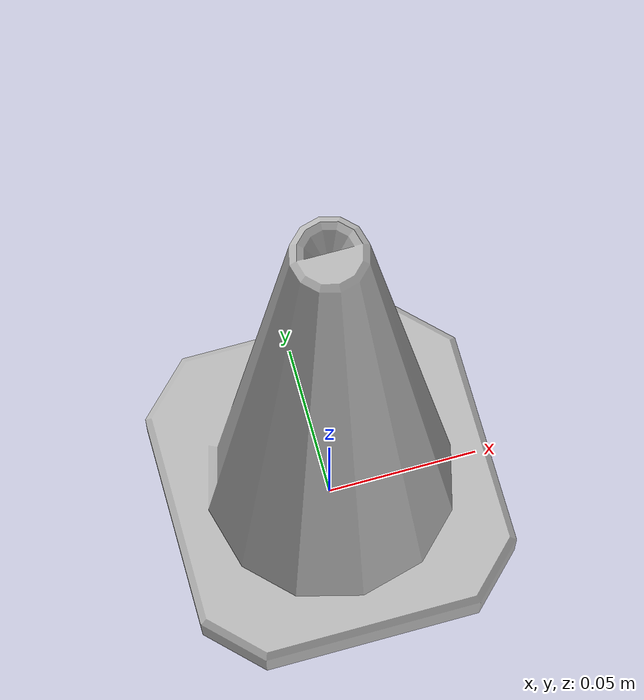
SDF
<?xml version="1.0" ?>
<sdf version="1.5">
  <model name="construction_cone">
    <link name="link">
      <inertial>
        <mass>0.500</mass>
        <pose>0.0 0 0.1 0 0 0</pose>
     <inertia>
      <ixx>1.2255193555060691e-03</ixx>
      <ixy>-1.4026567601404901e-21</ixy>
      <ixz>-2.7698252259893525e-21</ixz>
      <iyy>1.1991964170746813e-03</iyy>
      <iyz>-1.1163047950312784e-21</iyz>
      <izz>7.84029984133492e-04</izz>
     </inertia>
  </inertial>
      <collision name="collision">
        <geometry>
          <mesh>
            <scale>2.2 2.2 2.2</scale>
            <uri>model://construction_cone/meshes/construction_cone.stl</uri>
          </mesh>
        </geometry>
      </collision>
      <visual name="visual">
        <geometry>
          <mesh>
            <scale>2.1 2.1 2.1</scale>
            <uri>model://construction_cone/meshes/construction_cone.dae</uri>
          </mesh>
        </geometry>
      </visual>
    </link>
  </model>
</sdf>
